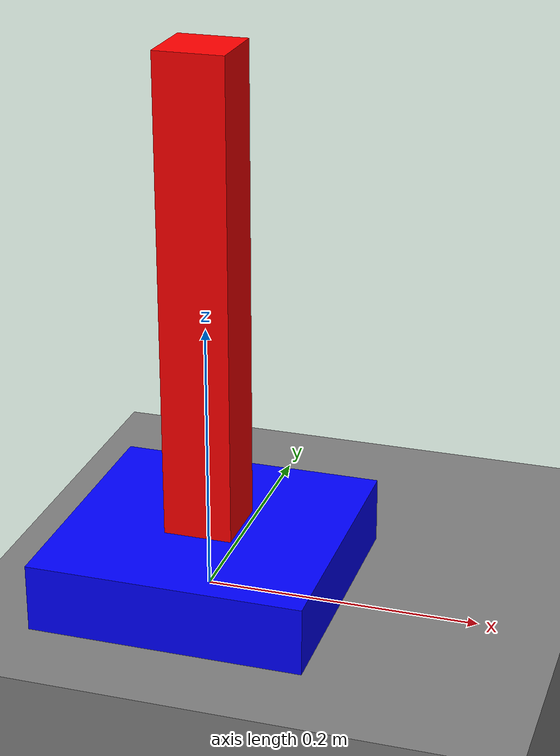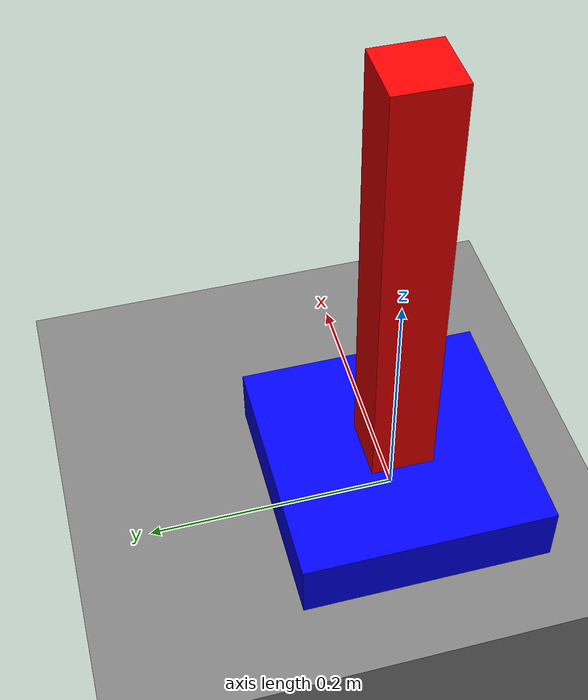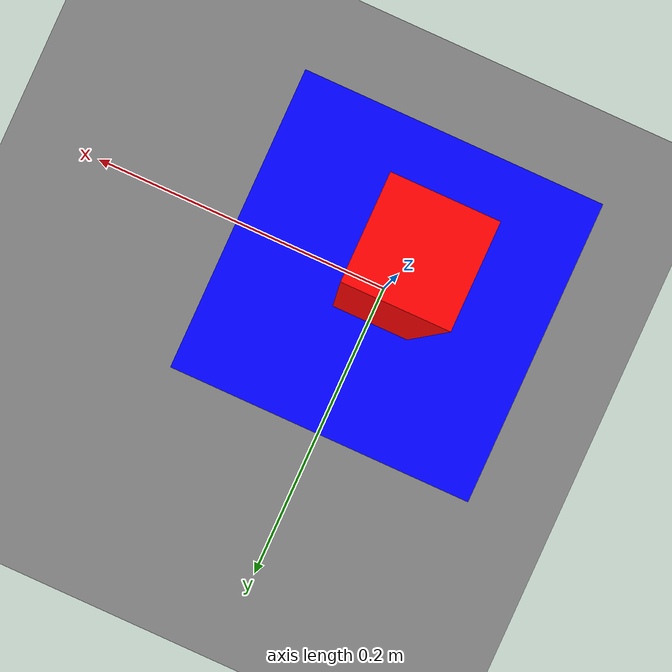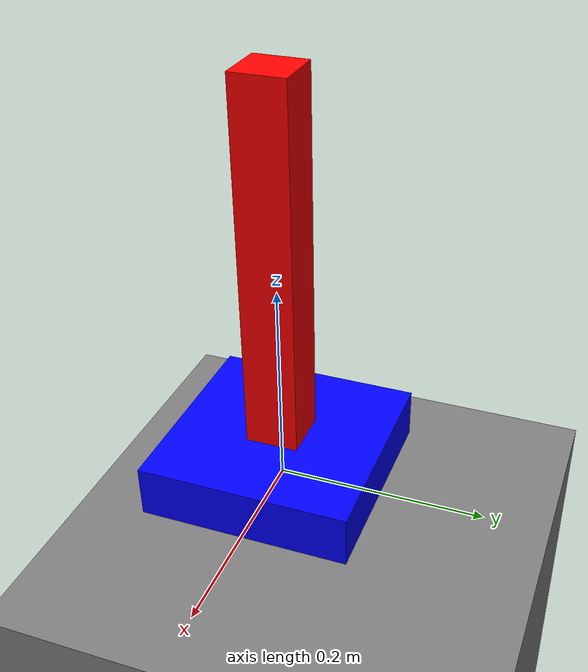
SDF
<sdf version='1.10'>
    <world name='servo_demo_world'>
        <physics name='1ms' type='ignored'>
            <max_step_size>0.001</max_step_size>
            <real_time_factor>1</real_time_factor>
        </physics>

        <plugin name='gz::sim::systems::Physics' filename='gz-sim-physics-system' />
        <plugin name='gz::sim::systems::UserCommands' filename='gz-sim-user-commands-system' />
        <plugin name='gz::sim::systems::SceneBroadcaster' filename='gz-sim-scene-broadcaster-system' />
        <plugin name='gz::sim::systems::Contact' filename='gz-sim-contact-system' />
        <plugin name='gz::sim::systems::Sensors' filename='gz-sim-sensors-system' />
        <plugin name='gz::sim::systems::Imu' filename='gz-sim-imu-system' />
        <plugin name='gz::sim::systems::ForceTorque' filename='gz-sim-forcetorque-system' />
        <plugin name='gz::sim::systems::AirPressure' filename='gz-sim-air-pressure-system' />

        <magnetic_field>5.5644999999999998e-06 2.2875799999999999e-05 -4.2388400000000002e-05</magnetic_field>
        <atmosphere type='adiabatic' />

        <scene>
            <ambient>0.8 0.8 0.8 1</ambient>
            <background>0.8 0.8 0.8 1</background>
            <shadows>true</shadows>
            <grid>false</grid>
        </scene>

        <light name='sun' type='directional'>
            <visualize>false</visualize>
            <pose>0 0 50 0 0 0</pose>
            <cast_shadows>true</cast_shadows>
            <intensity>2</intensity>
            <direction>-0.1 -0.5 -0.9</direction>
            <diffuse>0.8 0.8 0.8 1</diffuse>
            <specular>0.2 0.2 0.2 1</specular>
            <attenuation>
                <range>1000</range>
                <linear>0.01</linear>
                <constant>0.9</constant>
                <quadratic>0.001</quadratic>
            </attenuation>
            <spot>
                <inner_angle>0</inner_angle>
                <outer_angle>0</outer_angle>
                <falloff>0</falloff>
            </spot>
        </light>

        <!-- Ground plane -->
        <model name='ground_plane'>
            <static>true</static>
            <link name='link'>
                <pose>0 0 -0.5 0 0 0</pose>
                <collision name='collision'>
                    <geometry>
                        <box>
                            <size>100 100 1</size>
                        </box>
                    </geometry>
                </collision>
                <visual name='visual'>
                    <geometry>
                        <box>
                            <size>100 100 1</size>
                        </box>
                    </geometry>
                    <material>
                        <ambient>0.5 0.5 0.5 1</ambient>
                        <diffuse>0.5 0.5 0.5 1</diffuse>
                    </material>
                </visual>
            </link>
        </model>

        <!-- Simple servo demo model -->
        <model name='servo_demo'>
            <static>false</static>

            <!-- Base (固定在 world) -->
            <link name='base_link'>
                <pose>0 0 0 0 0 0</pose>
                <inertial>
                    <mass>5.0</mass>
                    <inertia>
                        <ixx>0.04</ixx>
                        <iyy>0.04</iyy>
                        <izz>0.04</izz>
                        <ixy>0</ixy>
                        <ixz>0</ixz>
                        <iyz>0</iyz>
                    </inertia>
                </inertial>
                <collision name='base_collision'>
                    <geometry>
                        <box>
                            <size>0.2 0.2 0.1</size>
                        </box>
                    </geometry>
                </collision>
                <visual name='base_visual'>
                    <geometry>
                        <box>
                            <size>0.2 0.2 0.1</size>
                        </box>
                    </geometry>
                    <material>
                        <ambient>0 0 1 1</ambient>
                        <diffuse>0 0 1 1</diffuse>
                    </material>
                </visual>
            </link>

            <!-- Output arm (可通过关节控制旋转) -->
            <link name='output_link'>
                <pose>0 0 0.2 0 0 0</pose>
                <inertial>
                    <mass>1.0</mass>
                    <inertia>
                        <ixx>0.01</ixx>
                        <iyy>0.01</iyy>
                        <izz>0.01</izz>
                        <ixy>0</ixy>
                        <ixz>0</ixz>
                        <iyz>0</iyz>
                    </inertia>
                </inertial>
                <collision name='output_collision'>
                    <geometry>
                        <box>
                            <size>0.05 0.05 0.4</size>
                        </box>
                    </geometry>
                </collision>
                <visual name='output_visual'>
                    <geometry>
                        <box>
                            <size>0.05 0.05 0.4</size>
                        </box>
                    </geometry>
                    <material>
                        <ambient>1 0 0 1</ambient>
                        <diffuse>1 0 0 1</diffuse>
                    </material>
                </visual>
                <sensor name="imu" type="imu">
                    <always_on>1</always_on>
                    <update_rate>100</update_rate>
                    <visualize>true</visualize>
                    <topic>imu</topic>
                    <enable_metrics>true</enable_metrics>
                </sensor>
            </link>

            <!-- 固定 base_link 到 world -->
            <joint name='base_to_world' type='fixed'>
                <parent>world</parent>
                <child>base_link</child>
            </joint>

            <!-- 伺服关节: revolute 轴沿 X 方向旋转 -->
            <joint name='servo_joint' type='revolute'>
                <parent>base_link</parent>
                <child>output_link</child>
                <pose>0 0 0 0 0 0</pose>
                <axis>
                    <xyz>0 0 1</xyz>
                    <limit>
                        <lower>-inf</lower>
                        <upper>inf</upper>
                        <effort>100</effort>
                        <velocity>200</velocity>
                    </limit>
                    <dynamics>
                        <damping>0.1</damping>
                    </dynamics>
                </axis>
            </joint>

            <!-- Joint Position Controller Plugin -->
            <plugin
                filename="gz-sim-joint-position-controller-system"
                name="gz::sim::systems::JointPositionController">
                <joint_name>servo_joint</joint_name>
                <topic>servo_joint</topic>
                <p_gain>500</p_gain>
                <i_gain>0.1</i_gain>
                <d_gain>1</d_gain>
                <cmd_min>-1000000</cmd_min>
                <cmd_max>1000000</cmd_max>
                <initial_position>0</initial_position>
                <use_velocity_commands>false</use_velocity_commands>
            </plugin>
        </model>
    </world>
</sdf>
